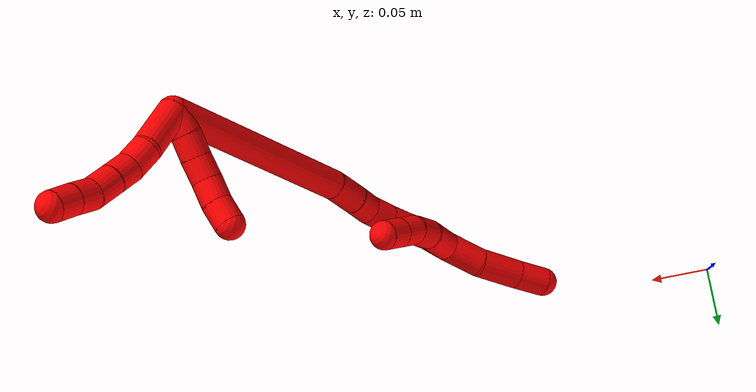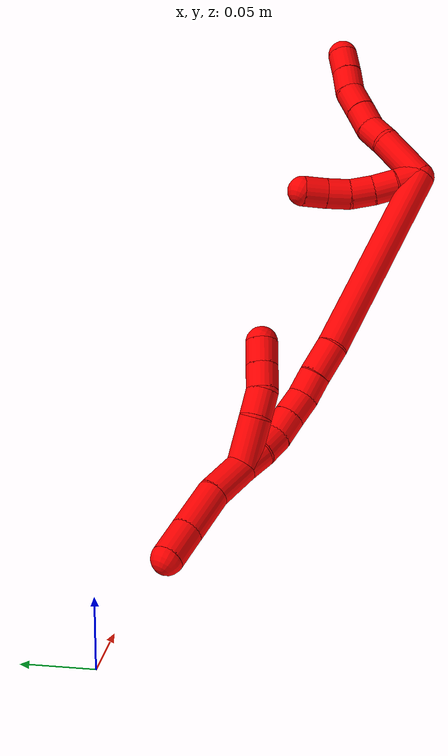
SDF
<sdf version="1.7">
 <world name="default">
  <model name="2">
   <static>0</static>
   <link name="2">
    <collision name="collision-cylinder-e_1_2_8">
     <pose>-0.019497 0.004752 0.0102 -0.435967 -1.04737 0.254439</pose>
     <geometry><cylinder><radius>0.0125</radius><length>0.045023</length></cylinder></geometry>
     <surface>
      <friction><ode><mu>1.16</mu><mu2>1.16</mu2><slip1>0</slip1><slip2>0</slip2></ode></friction>
      <contact><ode><kp>1e+06</kp><kd>1</kd><max_vel>0</max_vel><min_depth>0.001</min_depth></ode></contact>
     </surface>
    </collision>
    <visual name="visual-cylinder-e_1_2_8">
     <pose>-0.019497 0.004752 0.0102 -0.435967 -1.04737 0.254439</pose>
     <geometry><cylinder><radius>0.0125</radius><length>0.045023</length></cylinder></geometry>
     <material><ambient>1 0 0 1</ambient></material>
    </visual>
    <collision name="collision-cylinder-e_2_8_9">
     <pose>-0.047315 0.014202 0.025452 -0.749161 -0.87847 0.365315</pose>
     <geometry><cylinder><radius>0.0125</radius><length>0.021617</length></cylinder></geometry>
     <surface>
      <friction><ode><mu>1.16</mu><mu2>1.16</mu2><slip1>0</slip1><slip2>0</slip2></ode></friction>
      <contact><ode><kp>1e+06</kp><kd>1</kd><max_vel>0</max_vel><min_depth>0.001</min_depth></ode></contact>
     </surface>
    </collision>
    <visual name="visual-cylinder-e_2_8_9">
     <pose>-0.047315 0.014202 0.025452 -0.749161 -0.87847 0.365315</pose>
     <geometry><cylinder><radius>0.0125</radius><length>0.021617</length></cylinder></geometry>
     <material><ambient>1 0 0 1</ambient></material>
    </visual>
    <collision name="collision-cylinder-e_3_9_10">
     <pose>-0.063128 0.021079 0.037345 -0.308197 -0.806735 0.132386</pose>
     <geometry><cylinder><radius>0.0125</radius><length>0.020754</length></cylinder></geometry>
     <surface>
      <friction><ode><mu>1.16</mu><mu2>1.16</mu2><slip1>0</slip1><slip2>0</slip2></ode></friction>
      <contact><ode><kp>1e+06</kp><kd>1</kd><max_vel>0</max_vel><min_depth>0.001</min_depth></ode></contact>
     </surface>
    </collision>
    <visual name="visual-cylinder-e_3_9_10">
     <pose>-0.063128 0.021079 0.037345 -0.308197 -0.806735 0.132386</pose>
     <geometry><cylinder><radius>0.0125</radius><length>0.020754</length></cylinder></geometry>
     <material><ambient>1 0 0 1</ambient></material>
    </visual>
    <collision name="collision-cylinder-e_4_10_11">
     <pose>-0.078618 0.026083 0.051556 -0.366194 -0.792013 0.154529</pose>
     <geometry><cylinder><radius>0.0125</radius><length>0.022474</length></cylinder></geometry>
     <surface>
      <friction><ode><mu>1.16</mu><mu2>1.16</mu2><slip1>0</slip1><slip2>0</slip2></ode></friction>
      <contact><ode><kp>1e+06</kp><kd>1</kd><max_vel>0</max_vel><min_depth>0.001</min_depth></ode></contact>
     </surface>
    </collision>
    <visual name="visual-cylinder-e_4_10_11">
     <pose>-0.078618 0.026083 0.051556 -0.366194 -0.792013 0.154529</pose>
     <geometry><cylinder><radius>0.0125</radius><length>0.022474</length></cylinder></geometry>
     <material><ambient>1 0 0 1</ambient></material>
    </visual>
    <collision name="collision-cylinder-e_5_11_12">
     <pose>-0.092059 0.029851 0.067312 -0.111808 -0.572841 0.032961</pose>
     <geometry><cylinder><radius>0.0125</radius><length>0.020083</length></cylinder></geometry>
     <surface>
      <friction><ode><mu>1.16</mu><mu2>1.16</mu2><slip1>0</slip1><slip2>0</slip2></ode></friction>
      <contact><ode><kp>1e+06</kp><kd>1</kd><max_vel>0</max_vel><min_depth>0.001</min_depth></ode></contact>
     </surface>
    </collision>
    <visual name="visual-cylinder-e_5_11_12">
     <pose>-0.092059 0.029851 0.067312 -0.111808 -0.572841 0.032961</pose>
     <geometry><cylinder><radius>0.0125</radius><length>0.020083</length></cylinder></geometry>
     <material><ambient>1 0 0 1</ambient></material>
    </visual>
    <collision name="collision-cylinder-e_6_12_6">
     <pose>-0.103217 0.032058 0.083835 -0.15429 -0.606695 0.048381</pose>
     <geometry><cylinder><radius>0.0125</radius><length>0.020048</length></cylinder></geometry>
     <surface>
      <friction><ode><mu>1.16</mu><mu2>1.16</mu2><slip1>0</slip1><slip2>0</slip2></ode></friction>
      <contact><ode><kp>1e+06</kp><kd>1</kd><max_vel>0</max_vel><min_depth>0.001</min_depth></ode></contact>
     </surface>
    </collision>
    <visual name="visual-cylinder-e_6_12_6">
     <pose>-0.103217 0.032058 0.083835 -0.15429 -0.606695 0.048381</pose>
     <geometry><cylinder><radius>0.0125</radius><length>0.020048</length></cylinder></geometry>
     <material><ambient>1 0 0 1</ambient></material>
    </visual>
    <collision name="collision-cylinder-e_1_2_13">
     <pose>-0.006938 0.001442 -0.007056 -2.93996 -0.766731 2.6501</pose>
     <geometry><cylinder><radius>0.0125</radius><length>0.02</length></cylinder></geometry>
     <surface>
      <friction><ode><mu>1.16</mu><mu2>1.16</mu2><slip1>0</slip1><slip2>0</slip2></ode></friction>
      <contact><ode><kp>1e+06</kp><kd>1</kd><max_vel>0</max_vel><min_depth>0.001</min_depth></ode></contact>
     </surface>
    </collision>
    <visual name="visual-cylinder-e_1_2_13">
     <pose>-0.006938 0.001442 -0.007056 -2.93996 -0.766731 2.6501</pose>
     <geometry><cylinder><radius>0.0125</radius><length>0.02</length></cylinder></geometry>
     <material><ambient>1 0 0 1</ambient></material>
    </visual>
    <collision name="collision-cylinder-e_2_13_14">
     <pose>-0.021174 0.005262 -0.020522 -2.78648 -0.818018 2.35657</pose>
     <geometry><cylinder><radius>0.0125</radius><length>0.02</length></cylinder></geometry>
     <surface>
      <friction><ode><mu>1.16</mu><mu2>1.16</mu2><slip1>0</slip1><slip2>0</slip2></ode></friction>
      <contact><ode><kp>1e+06</kp><kd>1</kd><max_vel>0</max_vel><min_depth>0.001</min_depth></ode></contact>
     </surface>
    </collision>
    <visual name="visual-cylinder-e_2_13_14">
     <pose>-0.021174 0.005262 -0.020522 -2.78648 -0.818018 2.35657</pose>
     <geometry><cylinder><radius>0.0125</radius><length>0.02</length></cylinder></geometry>
     <material><ambient>1 0 0 1</ambient></material>
    </visual>
    <collision name="collision-cylinder-e_3_14_15">
     <pose>-0.036289 0.008981 -0.033023 -2.92469 -0.897384 2.69677</pose>
     <geometry><cylinder><radius>0.0125</radius><length>0.02</length></cylinder></geometry>
     <surface>
      <friction><ode><mu>1.16</mu><mu2>1.16</mu2><slip1>0</slip1><slip2>0</slip2></ode></friction>
      <contact><ode><kp>1e+06</kp><kd>1</kd><max_vel>0</max_vel><min_depth>0.001</min_depth></ode></contact>
     </surface>
    </collision>
    <visual name="visual-cylinder-e_3_14_15">
     <pose>-0.036289 0.008981 -0.033023 -2.92469 -0.897384 2.69677</pose>
     <geometry><cylinder><radius>0.0125</radius><length>0.02</length></cylinder></geometry>
     <material><ambient>1 0 0 1</ambient></material>
    </visual>
    <collision name="collision-cylinder-e_4_15_16">
     <pose>-0.052994 0.010651 -0.043683 -3.06993 -1.09486 3.02411</pose>
     <geometry><cylinder><radius>0.0125</radius><length>0.02</length></cylinder></geometry>
     <surface>
      <friction><ode><mu>1.16</mu><mu2>1.16</mu2><slip1>0</slip1><slip2>0</slip2></ode></friction>
      <contact><ode><kp>1e+06</kp><kd>1</kd><max_vel>0</max_vel><min_depth>0.001</min_depth></ode></contact>
     </surface>
    </collision>
    <visual name="visual-cylinder-e_4_15_16">
     <pose>-0.052994 0.010651 -0.043683 -3.06993 -1.09486 3.02411</pose>
     <geometry><cylinder><radius>0.0125</radius><length>0.02</length></cylinder></geometry>
     <material><ambient>1 0 0 1</ambient></material>
    </visual>
    <collision name="collision-cylinder-e_5_16_5">
     <pose>-0.070644 0.009741 -0.052913 2.88197 -1.06765 -2.70684</pose>
     <geometry><cylinder><radius>0.0125</radius><length>0.02</length></cylinder></geometry>
     <surface>
      <friction><ode><mu>1.16</mu><mu2>1.16</mu2><slip1>0</slip1><slip2>0</slip2></ode></friction>
      <contact><ode><kp>1e+06</kp><kd>1</kd><max_vel>0</max_vel><min_depth>0.001</min_depth></ode></contact>
     </surface>
    </collision>
    <visual name="visual-cylinder-e_5_16_5">
     <pose>-0.070644 0.009741 -0.052913 2.88197 -1.06765 -2.70684</pose>
     <geometry><cylinder><radius>0.0125</radius><length>0.02</length></cylinder></geometry>
     <material><ambient>1 0 0 1</ambient></material>
    </visual>
    <collision name="collision-cylinder-e_1_2_17">
     <pose>0.000902 0.000461 -0.085694 -3.13621 0.010521 -2.1957</pose>
     <geometry><cylinder><radius>0.0125</radius><length>0.171401</length></cylinder></geometry>
     <surface>
      <friction><ode><mu>1.16</mu><mu2>1.16</mu2><slip1>0</slip1><slip2>0</slip2></ode></friction>
      <contact><ode><kp>1e+06</kp><kd>1</kd><max_vel>0</max_vel><min_depth>0.001</min_depth></ode></contact>
     </surface>
    </collision>
    <visual name="visual-cylinder-e_1_2_17">
     <pose>0.000902 0.000461 -0.085694 -3.13621 0.010521 -2.1957</pose>
     <geometry><cylinder><radius>0.0125</radius><length>0.171401</length></cylinder></geometry>
     <material><ambient>1 0 0 1</ambient></material>
    </visual>
    <collision name="collision-cylinder-e_2_17_18">
     <pose>0.001028 0.002625 -0.184997 -3.01716 -0.056455 0.851087</pose>
     <geometry><cylinder><radius>0.0125</radius><length>0.027471</length></cylinder></geometry>
     <surface>
      <friction><ode><mu>1.16</mu><mu2>1.16</mu2><slip1>0</slip1><slip2>0</slip2></ode></friction>
      <contact><ode><kp>1e+06</kp><kd>1</kd><max_vel>0</max_vel><min_depth>0.001</min_depth></ode></contact>
     </surface>
    </collision>
    <visual name="visual-cylinder-e_2_17_18">
     <pose>0.001028 0.002625 -0.184997 -3.01716 -0.056455 0.851087</pose>
     <geometry><cylinder><radius>0.0125</radius><length>0.027471</length></cylinder></geometry>
     <material><ambient>1 0 0 1</ambient></material>
    </visual>
    <collision name="collision-cylinder-e_3_18_19">
     <pose>0.000168 0.006226 -0.208521 -2.9524 -0.008411 0.088597</pose>
     <geometry><cylinder><radius>0.0125</radius><length>0.020194</length></cylinder></geometry>
     <surface>
      <friction><ode><mu>1.16</mu><mu2>1.16</mu2><slip1>0</slip1><slip2>0</slip2></ode></friction>
      <contact><ode><kp>1e+06</kp><kd>1</kd><max_vel>0</max_vel><min_depth>0.001</min_depth></ode></contact>
     </surface>
    </collision>
    <visual name="visual-cylinder-e_3_18_19">
     <pose>0.000168 0.006226 -0.208521 -2.9524 -0.008411 0.088597</pose>
     <geometry><cylinder><radius>0.0125</radius><length>0.020194</length></cylinder></geometry>
     <material><ambient>1 0 0 1</ambient></material>
    </visual>
    <collision name="collision-cylinder-e_4_19_20">
     <pose>-0.001135 0.007289 -0.228571 3.05939 -0.119287 -1.9354</pose>
     <geometry><cylinder><radius>0.0125</radius><length>0.020482</length></cylinder></geometry>
     <surface>
      <friction><ode><mu>1.16</mu><mu2>1.16</mu2><slip1>0</slip1><slip2>0</slip2></ode></friction>
      <contact><ode><kp>1e+06</kp><kd>1</kd><max_vel>0</max_vel><min_depth>0.001</min_depth></ode></contact>
     </surface>
    </collision>
    <visual name="visual-cylinder-e_4_19_20">
     <pose>-0.001135 0.007289 -0.228571 3.05939 -0.119287 -1.9354</pose>
     <geometry><cylinder><radius>0.0125</radius><length>0.020482</length></cylinder></geometry>
     <material><ambient>1 0 0 1</ambient></material>
    </visual>
    <collision name="collision-cylinder-e_5_20_21">
     <pose>-0.00326 0.005404 -0.248827 3.03814 -0.088753 -1.4179</pose>
     <geometry><cylinder><radius>0.0125</radius><length>0.020432</length></cylinder></geometry>
     <surface>
      <friction><ode><mu>1.16</mu><mu2>1.16</mu2><slip1>0</slip1><slip2>0</slip2></ode></friction>
      <contact><ode><kp>1e+06</kp><kd>1</kd><max_vel>0</max_vel><min_depth>0.001</min_depth></ode></contact>
     </surface>
    </collision>
    <visual name="visual-cylinder-e_5_20_21">
     <pose>-0.00326 0.005404 -0.248827 3.03814 -0.088753 -1.4179</pose>
     <geometry><cylinder><radius>0.0125</radius><length>0.020432</length></cylinder></geometry>
     <material><ambient>1 0 0 1</ambient></material>
    </visual>
    <collision name="collision-cylinder-e_6_21_22">
     <pose>-0.006465 0.001224 -0.268166 2.81436 -0.231972 -1.2291</pose>
     <geometry><cylinder><radius>0.0125</radius><length>0.020005</length></cylinder></geometry>
     <surface>
      <friction><ode><mu>1.16</mu><mu2>1.16</mu2><slip1>0</slip1><slip2>0</slip2></ode></friction>
      <contact><ode><kp>1e+06</kp><kd>1</kd><max_vel>0</max_vel><min_depth>0.001</min_depth></ode></contact>
     </surface>
    </collision>
    <visual name="visual-cylinder-e_6_21_22">
     <pose>-0.006465 0.001224 -0.268166 2.81436 -0.231972 -1.2291</pose>
     <geometry><cylinder><radius>0.0125</radius><length>0.020005</length></cylinder></geometry>
     <material><ambient>1 0 0 1</ambient></material>
    </visual>
    <collision name="collision-cylinder-e_7_22_1">
     <pose>-0.012184 -0.003948 -0.286564 2.92258 -0.348753 -2.02569</pose>
     <geometry><cylinder><radius>0.0125</radius><length>0.020015</length></cylinder></geometry>
     <surface>
      <friction><ode><mu>1.16</mu><mu2>1.16</mu2><slip1>0</slip1><slip2>0</slip2></ode></friction>
      <contact><ode><kp>1e+06</kp><kd>1</kd><max_vel>0</max_vel><min_depth>0.001</min_depth></ode></contact>
     </surface>
    </collision>
    <visual name="visual-cylinder-e_7_22_1">
     <pose>-0.012184 -0.003948 -0.286564 2.92258 -0.348753 -2.02569</pose>
     <geometry><cylinder><radius>0.0125</radius><length>0.020015</length></cylinder></geometry>
     <material><ambient>1 0 0 1</ambient></material>
    </visual>
    <collision name="collision-cylinder-e_1_1_23">
     <pose>-0.019854 -0.012069 -0.278344 0.33602 -0.226648 -0.038602</pose>
     <geometry><cylinder><radius>0.0125</radius><length>0.037831</length></cylinder></geometry>
     <surface>
      <friction><ode><mu>1.16</mu><mu2>1.16</mu2><slip1>0</slip1><slip2>0</slip2></ode></friction>
      <contact><ode><kp>1e+06</kp><kd>1</kd><max_vel>0</max_vel><min_depth>0.001</min_depth></ode></contact>
     </surface>
    </collision>
    <visual name="visual-cylinder-e_1_1_23">
     <pose>-0.019854 -0.012069 -0.278344 0.33602 -0.226648 -0.038602</pose>
     <geometry><cylinder><radius>0.0125</radius><length>0.037831</length></cylinder></geometry>
     <material><ambient>1 0 0 1</ambient></material>
    </visual>
    <collision name="collision-cylinder-e_2_23_24">
     <pose>-0.026591 -0.019281 -0.25054 0.108566 -0.233203 -0.012729</pose>
     <geometry><cylinder><radius>0.0125</radius><length>0.021512</length></cylinder></geometry>
     <surface>
      <friction><ode><mu>1.16</mu><mu2>1.16</mu2><slip1>0</slip1><slip2>0</slip2></ode></friction>
      <contact><ode><kp>1e+06</kp><kd>1</kd><max_vel>0</max_vel><min_depth>0.001</min_depth></ode></contact>
     </surface>
    </collision>
    <visual name="visual-cylinder-e_2_23_24">
     <pose>-0.026591 -0.019281 -0.25054 0.108566 -0.233203 -0.012729</pose>
     <geometry><cylinder><radius>0.0125</radius><length>0.021512</length></cylinder></geometry>
     <material><ambient>1 0 0 1</ambient></material>
    </visual>
    <collision name="collision-cylinder-e_3_24_25">
     <pose>-0.033684 -0.019832 -0.231075 -0.064187 -0.469588 0.015359</pose>
     <geometry><cylinder><radius>0.0125</radius><length>0.020365</length></cylinder></geometry>
     <surface>
      <friction><ode><mu>1.16</mu><mu2>1.16</mu2><slip1>0</slip1><slip2>0</slip2></ode></friction>
      <contact><ode><kp>1e+06</kp><kd>1</kd><max_vel>0</max_vel><min_depth>0.001</min_depth></ode></contact>
     </surface>
    </collision>
    <visual name="visual-cylinder-e_3_24_25">
     <pose>-0.033684 -0.019832 -0.231075 -0.064187 -0.469588 0.015359</pose>
     <geometry><cylinder><radius>0.0125</radius><length>0.020365</length></cylinder></geometry>
     <material><ambient>1 0 0 1</ambient></material>
    </visual>
    <collision name="collision-cylinder-e_4_25_4">
     <pose>-0.04292 -0.01883 -0.212994 -0.046514 -0.473636 0.011228</pose>
     <geometry><cylinder><radius>0.0125</radius><length>0.020292</length></cylinder></geometry>
     <surface>
      <friction><ode><mu>1.16</mu><mu2>1.16</mu2><slip1>0</slip1><slip2>0</slip2></ode></friction>
      <contact><ode><kp>1e+06</kp><kd>1</kd><max_vel>0</max_vel><min_depth>0.001</min_depth></ode></contact>
     </surface>
    </collision>
    <visual name="visual-cylinder-e_4_25_4">
     <pose>-0.04292 -0.01883 -0.212994 -0.046514 -0.473636 0.011228</pose>
     <geometry><cylinder><radius>0.0125</radius><length>0.020292</length></cylinder></geometry>
     <material><ambient>1 0 0 1</ambient></material>
    </visual>
    <collision name="collision-cylinder-e_1_1_26">
     <pose>-0.020438 -0.009804 -0.311573 2.90525 -0.288626 -1.77161</pose>
     <geometry><cylinder><radius>0.0125</radius><length>0.033966</length></cylinder></geometry>
     <surface>
      <friction><ode><mu>1.16</mu><mu2>1.16</mu2><slip1>0</slip1><slip2>0</slip2></ode></friction>
      <contact><ode><kp>1e+06</kp><kd>1</kd><max_vel>0</max_vel><min_depth>0.001</min_depth></ode></contact>
     </surface>
    </collision>
    <visual name="visual-cylinder-e_1_1_26">
     <pose>-0.020438 -0.009804 -0.311573 2.90525 -0.288626 -1.77161</pose>
     <geometry><cylinder><radius>0.0125</radius><length>0.033966</length></cylinder></geometry>
     <material><ambient>1 0 0 1</ambient></material>
    </visual>
    <collision name="collision-cylinder-e_2_26_27">
     <pose>-0.027106 -0.018329 -0.34612 2.89493 -0.094754 -0.730617</pose>
     <geometry><cylinder><radius>0.0125</radius><length>0.038781</length></cylinder></geometry>
     <surface>
      <friction><ode><mu>1.16</mu><mu2>1.16</mu2><slip1>0</slip1><slip2>0</slip2></ode></friction>
      <contact><ode><kp>1e+06</kp><kd>1</kd><max_vel>0</max_vel><min_depth>0.001</min_depth></ode></contact>
     </surface>
    </collision>
    <visual name="visual-cylinder-e_2_26_27">
     <pose>-0.027106 -0.018329 -0.34612 2.89493 -0.094754 -0.730617</pose>
     <geometry><cylinder><radius>0.0125</radius><length>0.038781</length></cylinder></geometry>
     <material><ambient>1 0 0 1</ambient></material>
    </visual>
    <collision name="collision-cylinder-e_3_27_3">
     <pose>-0.030154 -0.026836 -0.377871 2.85834 -0.089119 -0.606186</pose>
     <geometry><cylinder><radius>0.0125</radius><length>0.027253</length></cylinder></geometry>
     <surface>
      <friction><ode><mu>1.16</mu><mu2>1.16</mu2><slip1>0</slip1><slip2>0</slip2></ode></friction>
      <contact><ode><kp>1e+06</kp><kd>1</kd><max_vel>0</max_vel><min_depth>0.001</min_depth></ode></contact>
     </surface>
    </collision>
    <visual name="visual-cylinder-e_3_27_3">
     <pose>-0.030154 -0.026836 -0.377871 2.85834 -0.089119 -0.606186</pose>
     <geometry><cylinder><radius>0.0125</radius><length>0.027253</length></cylinder></geometry>
     <material><ambient>1 0 0 1</ambient></material>
    </visual>
    <collision name="collision-sphere-3">
     <pose>-0.031367 -0.030629 -0.390902 0 -0 0</pose>
     <geometry><sphere><radius>0.0125</radius></sphere></geometry>
     <surface>
      <friction><ode><mu>1.16</mu><mu2>1.16</mu2><slip1>0</slip1><slip2>0</slip2></ode></friction>
      <contact><ode><kp>1e+06</kp><kd>1</kd><max_vel>0</max_vel><min_depth>0.001</min_depth></ode></contact>
     </surface>
    </collision>
    <visual name="visual-sphere-3">
     <pose>-0.031367 -0.030629 -0.390902 0 -0 0</pose>
     <geometry><sphere><radius>0.0125</radius></sphere></geometry>
     <material><ambient>1 0 0 1</ambient></material>
    </visual>
    <collision name="collision-sphere-27">
     <pose>-0.028941 -0.023043 -0.364839 0 -0 0</pose>
     <geometry><sphere><radius>0.0125</radius></sphere></geometry>
     <surface>
      <friction><ode><mu>1.16</mu><mu2>1.16</mu2><slip1>0</slip1><slip2>0</slip2></ode></friction>
      <contact><ode><kp>1e+06</kp><kd>1</kd><max_vel>0</max_vel><min_depth>0.001</min_depth></ode></contact>
     </surface>
    </collision>
    <visual name="visual-sphere-27">
     <pose>-0.028941 -0.023043 -0.364839 0 -0 0</pose>
     <geometry><sphere><radius>0.0125</radius></sphere></geometry>
     <material><ambient>1 0 0 1</ambient></material>
    </visual>
    <collision name="collision-sphere-26">
     <pose>-0.025272 -0.013616 -0.327401 0 -0 0</pose>
     <geometry><sphere><radius>0.0125</radius></sphere></geometry>
     <surface>
      <friction><ode><mu>1.16</mu><mu2>1.16</mu2><slip1>0</slip1><slip2>0</slip2></ode></friction>
      <contact><ode><kp>1e+06</kp><kd>1</kd><max_vel>0</max_vel><min_depth>0.001</min_depth></ode></contact>
     </surface>
    </collision>
    <visual name="visual-sphere-26">
     <pose>-0.025272 -0.013616 -0.327401 0 -0 0</pose>
     <geometry><sphere><radius>0.0125</radius></sphere></geometry>
     <material><ambient>1 0 0 1</ambient></material>
    </visual>
    <collision name="collision-sphere-4">
     <pose>-0.047548 -0.01841 -0.203974 0 -0 0</pose>
     <geometry><sphere><radius>0.0125</radius></sphere></geometry>
     <surface>
      <friction><ode><mu>1.16</mu><mu2>1.16</mu2><slip1>0</slip1><slip2>0</slip2></ode></friction>
      <contact><ode><kp>1e+06</kp><kd>1</kd><max_vel>0</max_vel><min_depth>0.001</min_depth></ode></contact>
     </surface>
    </collision>
    <visual name="visual-sphere-4">
     <pose>-0.047548 -0.01841 -0.203974 0 -0 0</pose>
     <geometry><sphere><radius>0.0125</radius></sphere></geometry>
     <material><ambient>1 0 0 1</ambient></material>
    </visual>
    <collision name="collision-sphere-25">
     <pose>-0.038292 -0.01925 -0.222013 0 -0 0</pose>
     <geometry><sphere><radius>0.0125</radius></sphere></geometry>
     <surface>
      <friction><ode><mu>1.16</mu><mu2>1.16</mu2><slip1>0</slip1><slip2>0</slip2></ode></friction>
      <contact><ode><kp>1e+06</kp><kd>1</kd><max_vel>0</max_vel><min_depth>0.001</min_depth></ode></contact>
     </surface>
    </collision>
    <visual name="visual-sphere-25">
     <pose>-0.038292 -0.01925 -0.222013 0 -0 0</pose>
     <geometry><sphere><radius>0.0125</radius></sphere></geometry>
     <material><ambient>1 0 0 1</ambient></material>
    </visual>
    <collision name="collision-sphere-24">
     <pose>-0.029076 -0.020415 -0.240136 0 -0 0</pose>
     <geometry><sphere><radius>0.0125</radius></sphere></geometry>
     <surface>
      <friction><ode><mu>1.16</mu><mu2>1.16</mu2><slip1>0</slip1><slip2>0</slip2></ode></friction>
      <contact><ode><kp>1e+06</kp><kd>1</kd><max_vel>0</max_vel><min_depth>0.001</min_depth></ode></contact>
     </surface>
    </collision>
    <visual name="visual-sphere-24">
     <pose>-0.029076 -0.020415 -0.240136 0 -0 0</pose>
     <geometry><sphere><radius>0.0125</radius></sphere></geometry>
     <material><ambient>1 0 0 1</ambient></material>
    </visual>
    <collision name="collision-sphere-23">
     <pose>-0.024105 -0.018147 -0.260943 0 -0 0</pose>
     <geometry><sphere><radius>0.0125</radius></sphere></geometry>
     <surface>
      <friction><ode><mu>1.16</mu><mu2>1.16</mu2><slip1>0</slip1><slip2>0</slip2></ode></friction>
      <contact><ode><kp>1e+06</kp><kd>1</kd><max_vel>0</max_vel><min_depth>0.001</min_depth></ode></contact>
     </surface>
    </collision>
    <visual name="visual-sphere-23">
     <pose>-0.024105 -0.018147 -0.260943 0 -0 0</pose>
     <geometry><sphere><radius>0.0125</radius></sphere></geometry>
     <material><ambient>1 0 0 1</ambient></material>
    </visual>
    <collision name="collision-sphere-1">
     <pose>-0.015604 -0.005992 -0.295745 0 -0 0</pose>
     <geometry><sphere><radius>0.0125</radius></sphere></geometry>
     <surface>
      <friction><ode><mu>1.16</mu><mu2>1.16</mu2><slip1>0</slip1><slip2>0</slip2></ode></friction>
      <contact><ode><kp>1e+06</kp><kd>1</kd><max_vel>0</max_vel><min_depth>0.001</min_depth></ode></contact>
     </surface>
    </collision>
    <visual name="visual-sphere-1">
     <pose>-0.015604 -0.005992 -0.295745 0 -0 0</pose>
     <geometry><sphere><radius>0.0125</radius></sphere></geometry>
     <material><ambient>1 0 0 1</ambient></material>
    </visual>
    <collision name="collision-sphere-22">
     <pose>-0.008764 -0.001905 -0.277384 0 -0 0</pose>
     <geometry><sphere><radius>0.0125</radius></sphere></geometry>
     <surface>
      <friction><ode><mu>1.16</mu><mu2>1.16</mu2><slip1>0</slip1><slip2>0</slip2></ode></friction>
      <contact><ode><kp>1e+06</kp><kd>1</kd><max_vel>0</max_vel><min_depth>0.001</min_depth></ode></contact>
     </surface>
    </collision>
    <visual name="visual-sphere-22">
     <pose>-0.008764 -0.001905 -0.277384 0 -0 0</pose>
     <geometry><sphere><radius>0.0125</radius></sphere></geometry>
     <material><ambient>1 0 0 1</ambient></material>
    </visual>
    <collision name="collision-sphere-21">
     <pose>-0.004165 0.004353 -0.258948 0 -0 0</pose>
     <geometry><sphere><radius>0.0125</radius></sphere></geometry>
     <surface>
      <friction><ode><mu>1.16</mu><mu2>1.16</mu2><slip1>0</slip1><slip2>0</slip2></ode></friction>
      <contact><ode><kp>1e+06</kp><kd>1</kd><max_vel>0</max_vel><min_depth>0.001</min_depth></ode></contact>
     </surface>
    </collision>
    <visual name="visual-sphere-21">
     <pose>-0.004165 0.004353 -0.258948 0 -0 0</pose>
     <geometry><sphere><radius>0.0125</radius></sphere></geometry>
     <material><ambient>1 0 0 1</ambient></material>
    </visual>
    <collision name="collision-sphere-12">
     <pose>-0.097502 0.030792 0.075698 0 -0 0</pose>
     <geometry><sphere><radius>0.0125</radius></sphere></geometry>
     <surface>
      <friction><ode><mu>1.16</mu><mu2>1.16</mu2><slip1>0</slip1><slip2>0</slip2></ode></friction>
      <contact><ode><kp>1e+06</kp><kd>1</kd><max_vel>0</max_vel><min_depth>0.001</min_depth></ode></contact>
     </surface>
    </collision>
    <visual name="visual-sphere-12">
     <pose>-0.097502 0.030792 0.075698 0 -0 0</pose>
     <geometry><sphere><radius>0.0125</radius></sphere></geometry>
     <material><ambient>1 0 0 1</ambient></material>
    </visual>
    <collision name="collision-sphere-11">
     <pose>-0.086617 0.028909 0.058926 0 -0 0</pose>
     <geometry><sphere><radius>0.0125</radius></sphere></geometry>
     <surface>
      <friction><ode><mu>1.16</mu><mu2>1.16</mu2><slip1>0</slip1><slip2>0</slip2></ode></friction>
      <contact><ode><kp>1e+06</kp><kd>1</kd><max_vel>0</max_vel><min_depth>0.001</min_depth></ode></contact>
     </surface>
    </collision>
    <visual name="visual-sphere-11">
     <pose>-0.086617 0.028909 0.058926 0 -0 0</pose>
     <geometry><sphere><radius>0.0125</radius></sphere></geometry>
     <material><ambient>1 0 0 1</ambient></material>
    </visual>
    <collision name="collision-sphere-10">
     <pose>-0.07062 0.023257 0.044186 0 -0 0</pose>
     <geometry><sphere><radius>0.0125</radius></sphere></geometry>
     <surface>
      <friction><ode><mu>1.16</mu><mu2>1.16</mu2><slip1>0</slip1><slip2>0</slip2></ode></friction>
      <contact><ode><kp>1e+06</kp><kd>1</kd><max_vel>0</max_vel><min_depth>0.001</min_depth></ode></contact>
     </surface>
    </collision>
    <visual name="visual-sphere-10">
     <pose>-0.07062 0.023257 0.044186 0 -0 0</pose>
     <geometry><sphere><radius>0.0125</radius></sphere></geometry>
     <material><ambient>1 0 0 1</ambient></material>
    </visual>
    <collision name="collision-sphere-9">
     <pose>-0.055635 0.018901 0.030504 0 -0 0</pose>
     <geometry><sphere><radius>0.0125</radius></sphere></geometry>
     <surface>
      <friction><ode><mu>1.16</mu><mu2>1.16</mu2><slip1>0</slip1><slip2>0</slip2></ode></friction>
      <contact><ode><kp>1e+06</kp><kd>1</kd><max_vel>0</max_vel><min_depth>0.001</min_depth></ode></contact>
     </surface>
    </collision>
    <visual name="visual-sphere-9">
     <pose>-0.055635 0.018901 0.030504 0 -0 0</pose>
     <geometry><sphere><radius>0.0125</radius></sphere></geometry>
     <material><ambient>1 0 0 1</ambient></material>
    </visual>
    <collision name="collision-sphere-2">
     <geometry><sphere><radius>0.0125</radius></sphere></geometry>
     <surface>
      <friction><ode><mu>1.16</mu><mu2>1.16</mu2><slip1>0</slip1><slip2>0</slip2></ode></friction>
      <contact><ode><kp>1e+06</kp><kd>1</kd><max_vel>0</max_vel><min_depth>0.001</min_depth></ode></contact>
     </surface>
    </collision>
    <visual name="visual-sphere-2">
     <geometry><sphere><radius>0.0125</radius></sphere></geometry>
     <material><ambient>1 0 0 1</ambient></material>
    </visual>
    <collision name="collision-sphere-19">
     <pose>8.3e-05 0.008124 -0.218437 0 -0 0</pose>
     <geometry><sphere><radius>0.0125</radius></sphere></geometry>
     <surface>
      <friction><ode><mu>1.16</mu><mu2>1.16</mu2><slip1>0</slip1><slip2>0</slip2></ode></friction>
      <contact><ode><kp>1e+06</kp><kd>1</kd><max_vel>0</max_vel><min_depth>0.001</min_depth></ode></contact>
     </surface>
    </collision>
    <visual name="visual-sphere-19">
     <pose>8.3e-05 0.008124 -0.218437 0 -0 0</pose>
     <geometry><sphere><radius>0.0125</radius></sphere></geometry>
     <material><ambient>1 0 0 1</ambient></material>
    </visual>
    <collision name="collision-sphere-8">
     <pose>-0.038995 0.009503 0.0204 0 -0 0</pose>
     <geometry><sphere><radius>0.0125</radius></sphere></geometry>
     <surface>
      <friction><ode><mu>1.16</mu><mu2>1.16</mu2><slip1>0</slip1><slip2>0</slip2></ode></friction>
      <contact><ode><kp>1e+06</kp><kd>1</kd><max_vel>0</max_vel><min_depth>0.001</min_depth></ode></contact>
     </surface>
    </collision>
    <visual name="visual-sphere-8">
     <pose>-0.038995 0.009503 0.0204 0 -0 0</pose>
     <geometry><sphere><radius>0.0125</radius></sphere></geometry>
     <material><ambient>1 0 0 1</ambient></material>
    </visual>
    <collision name="collision-sphere-6">
     <pose>-0.108933 0.033323 0.091973 0 -0 0</pose>
     <geometry><sphere><radius>0.0125</radius></sphere></geometry>
     <surface>
      <friction><ode><mu>1.16</mu><mu2>1.16</mu2><slip1>0</slip1><slip2>0</slip2></ode></friction>
      <contact><ode><kp>1e+06</kp><kd>1</kd><max_vel>0</max_vel><min_depth>0.001</min_depth></ode></contact>
     </surface>
    </collision>
    <visual name="visual-sphere-6">
     <pose>-0.108933 0.033323 0.091973 0 -0 0</pose>
     <geometry><sphere><radius>0.0125</radius></sphere></geometry>
     <material><ambient>1 0 0 1</ambient></material>
    </visual>
    <collision name="collision-sphere-13">
     <pose>-0.013876 0.002885 -0.014112 0 -0 0</pose>
     <geometry><sphere><radius>0.0125</radius></sphere></geometry>
     <surface>
      <friction><ode><mu>1.16</mu><mu2>1.16</mu2><slip1>0</slip1><slip2>0</slip2></ode></friction>
      <contact><ode><kp>1e+06</kp><kd>1</kd><max_vel>0</max_vel><min_depth>0.001</min_depth></ode></contact>
     </surface>
    </collision>
    <visual name="visual-sphere-13">
     <pose>-0.013876 0.002885 -0.014112 0 -0 0</pose>
     <geometry><sphere><radius>0.0125</radius></sphere></geometry>
     <material><ambient>1 0 0 1</ambient></material>
    </visual>
    <collision name="collision-sphere-14">
     <pose>-0.028472 0.007639 -0.026932 0 -0 0</pose>
     <geometry><sphere><radius>0.0125</radius></sphere></geometry>
     <surface>
      <friction><ode><mu>1.16</mu><mu2>1.16</mu2><slip1>0</slip1><slip2>0</slip2></ode></friction>
      <contact><ode><kp>1e+06</kp><kd>1</kd><max_vel>0</max_vel><min_depth>0.001</min_depth></ode></contact>
     </surface>
    </collision>
    <visual name="visual-sphere-14">
     <pose>-0.028472 0.007639 -0.026932 0 -0 0</pose>
     <geometry><sphere><radius>0.0125</radius></sphere></geometry>
     <material><ambient>1 0 0 1</ambient></material>
    </visual>
    <collision name="collision-sphere-15">
     <pose>-0.044106 0.010323 -0.039113 0 -0 0</pose>
     <geometry><sphere><radius>0.0125</radius></sphere></geometry>
     <surface>
      <friction><ode><mu>1.16</mu><mu2>1.16</mu2><slip1>0</slip1><slip2>0</slip2></ode></friction>
      <contact><ode><kp>1e+06</kp><kd>1</kd><max_vel>0</max_vel><min_depth>0.001</min_depth></ode></contact>
     </surface>
    </collision>
    <visual name="visual-sphere-15">
     <pose>-0.044106 0.010323 -0.039113 0 -0 0</pose>
     <geometry><sphere><radius>0.0125</radius></sphere></geometry>
     <material><ambient>1 0 0 1</ambient></material>
    </visual>
    <collision name="collision-sphere-16">
     <pose>-0.061883 0.010979 -0.048253 0 -0 0</pose>
     <geometry><sphere><radius>0.0125</radius></sphere></geometry>
     <surface>
      <friction><ode><mu>1.16</mu><mu2>1.16</mu2><slip1>0</slip1><slip2>0</slip2></ode></friction>
      <contact><ode><kp>1e+06</kp><kd>1</kd><max_vel>0</max_vel><min_depth>0.001</min_depth></ode></contact>
     </surface>
    </collision>
    <visual name="visual-sphere-16">
     <pose>-0.061883 0.010979 -0.048253 0 -0 0</pose>
     <geometry><sphere><radius>0.0125</radius></sphere></geometry>
     <material><ambient>1 0 0 1</ambient></material>
    </visual>
    <collision name="collision-sphere-5">
     <pose>-0.079404 0.008504 -0.057573 0 -0 0</pose>
     <geometry><sphere><radius>0.0125</radius></sphere></geometry>
     <surface>
      <friction><ode><mu>1.16</mu><mu2>1.16</mu2><slip1>0</slip1><slip2>0</slip2></ode></friction>
      <contact><ode><kp>1e+06</kp><kd>1</kd><max_vel>0</max_vel><min_depth>0.001</min_depth></ode></contact>
     </surface>
    </collision>
    <visual name="visual-sphere-5">
     <pose>-0.079404 0.008504 -0.057573 0 -0 0</pose>
     <geometry><sphere><radius>0.0125</radius></sphere></geometry>
     <material><ambient>1 0 0 1</ambient></material>
    </visual>
    <collision name="collision-sphere-17">
     <pose>0.001803 0.000923 -0.171389 0 -0 0</pose>
     <geometry><sphere><radius>0.0125</radius></sphere></geometry>
     <surface>
      <friction><ode><mu>1.16</mu><mu2>1.16</mu2><slip1>0</slip1><slip2>0</slip2></ode></friction>
      <contact><ode><kp>1e+06</kp><kd>1</kd><max_vel>0</max_vel><min_depth>0.001</min_depth></ode></contact>
     </surface>
    </collision>
    <visual name="visual-sphere-17">
     <pose>0.001803 0.000923 -0.171389 0 -0 0</pose>
     <geometry><sphere><radius>0.0125</radius></sphere></geometry>
     <material><ambient>1 0 0 1</ambient></material>
    </visual>
    <collision name="collision-sphere-18">
     <pose>0.000253 0.004327 -0.198605 0 -0 0</pose>
     <geometry><sphere><radius>0.0125</radius></sphere></geometry>
     <surface>
      <friction><ode><mu>1.16</mu><mu2>1.16</mu2><slip1>0</slip1><slip2>0</slip2></ode></friction>
      <contact><ode><kp>1e+06</kp><kd>1</kd><max_vel>0</max_vel><min_depth>0.001</min_depth></ode></contact>
     </surface>
    </collision>
    <visual name="visual-sphere-18">
     <pose>0.000253 0.004327 -0.198605 0 -0 0</pose>
     <geometry><sphere><radius>0.0125</radius></sphere></geometry>
     <material><ambient>1 0 0 1</ambient></material>
    </visual>
    <collision name="collision-sphere-20">
     <pose>-0.002354 0.006455 -0.238705 0 -0 0</pose>
     <geometry><sphere><radius>0.0125</radius></sphere></geometry>
     <surface>
      <friction><ode><mu>1.16</mu><mu2>1.16</mu2><slip1>0</slip1><slip2>0</slip2></ode></friction>
      <contact><ode><kp>1e+06</kp><kd>1</kd><max_vel>0</max_vel><min_depth>0.001</min_depth></ode></contact>
     </surface>
    </collision>
    <visual name="visual-sphere-20">
     <pose>-0.002354 0.006455 -0.238705 0 -0 0</pose>
     <geometry><sphere><radius>0.0125</radius></sphere></geometry>
     <material><ambient>1 0 0 1</ambient></material>
    </visual>
    <inertial>
     <pose>-0.024508 0.000744 -0.135022 0 -0 0</pose>
     <mass>0.75</mass>
     <inertia><ixx>-0.000599</ixx><ixy>0</ixy><ixz>0</ixz><iyy>-8.1e-05</iyy><iyz>0</iyz><izz>-0</izz></inertia>
    </inertial>
   </link>
   <pose>0.423532 -0.176832 0.241291 -0.732672 0.448446 -1.62438</pose>
  </model>
 </world>
</sdf>
